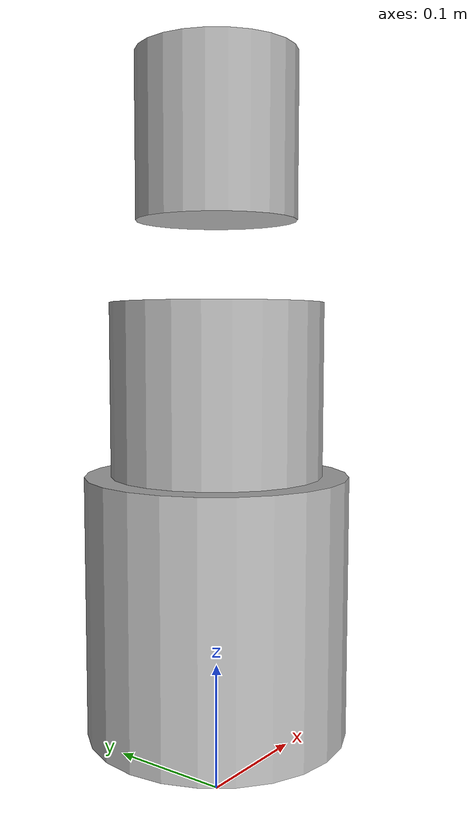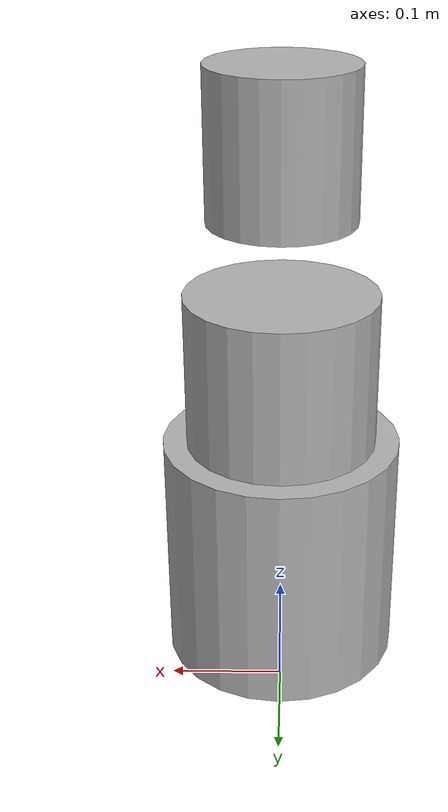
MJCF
<mujoco model="simple_robot_arm">
  <compiler angle="degree" coordinate="local"/>

  <default>
    <joint armature="0.1" damping="0.1" limited="true"/>
    <geom contype="1" conaffinity="0" density="5000" friction="1 0.1 0.1" rgba="0.7 0.7 0.7 1"/>
    <motor ctrlrange="-2 2" ctrllimited="true"/>
  </default>

  <asset>
    <!-- Define materials, meshes, etc. -->
  </asset>

  <worldbody>
    <body name="base" pos="0 0 0.1">
      <joint name="joint1" type="hinge" axis="0 0 1" range="-180 180"/>
      <geom type="cylinder" size="0.1 0.1" pos="0 0 0.05"/>
      <body name="link1" pos="0 0 0.1">
        <joint name="joint2" type="hinge" axis="0 1 0" range="-180 180"/>
        <geom type="cylinder" size="0.08 0.08" pos="0 0 0.1"/>
        <body name="link2" pos="0 0 0.2">
          <joint name="joint3" type="hinge" axis="0 1 0" range="-180 180"/>
          <geom type="cylinder" size="0.06 0.06" pos="0 0 0.1"/>
        </body>
      </body>
    </body>
  </worldbody>

  <actuator>
    <position joint="joint1"/>
    <position joint="joint2"/>
    <position joint="joint3"/>
  </actuator>
</mujoco>
